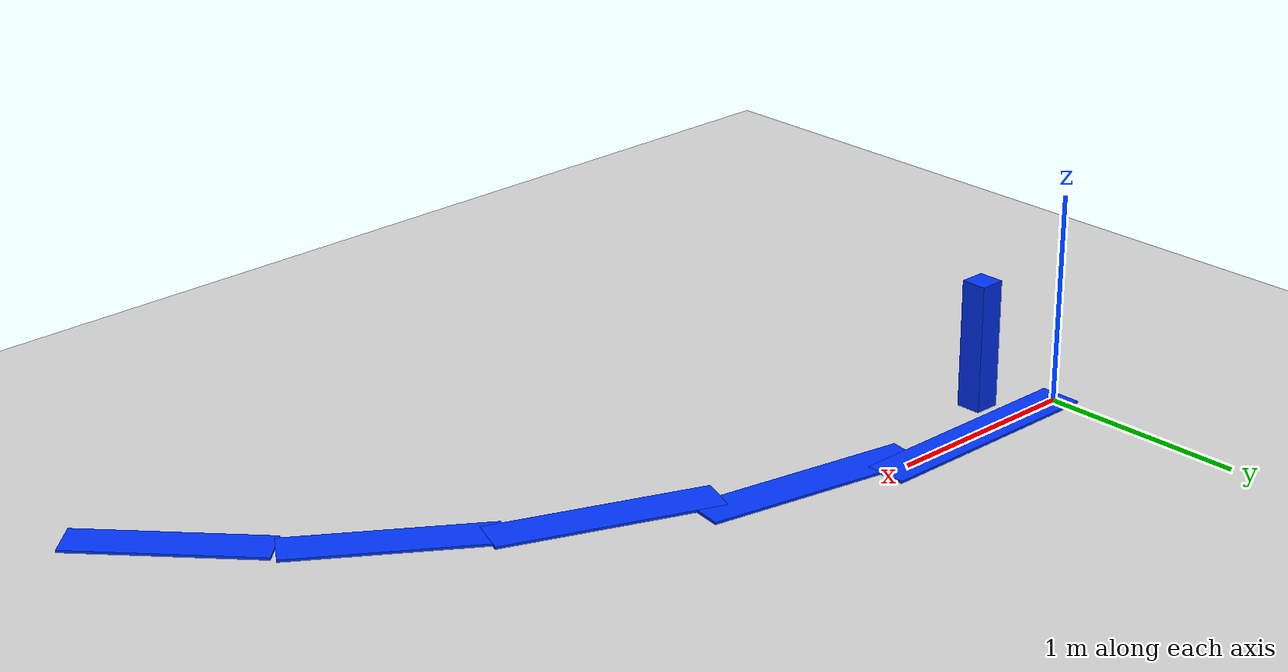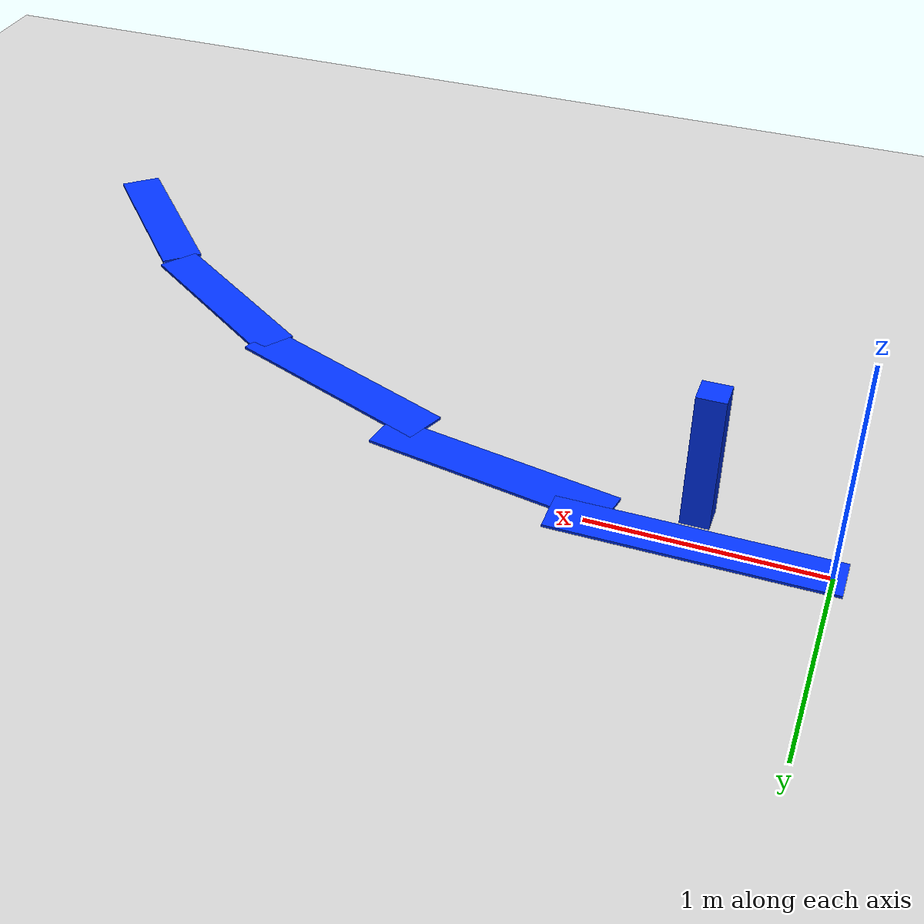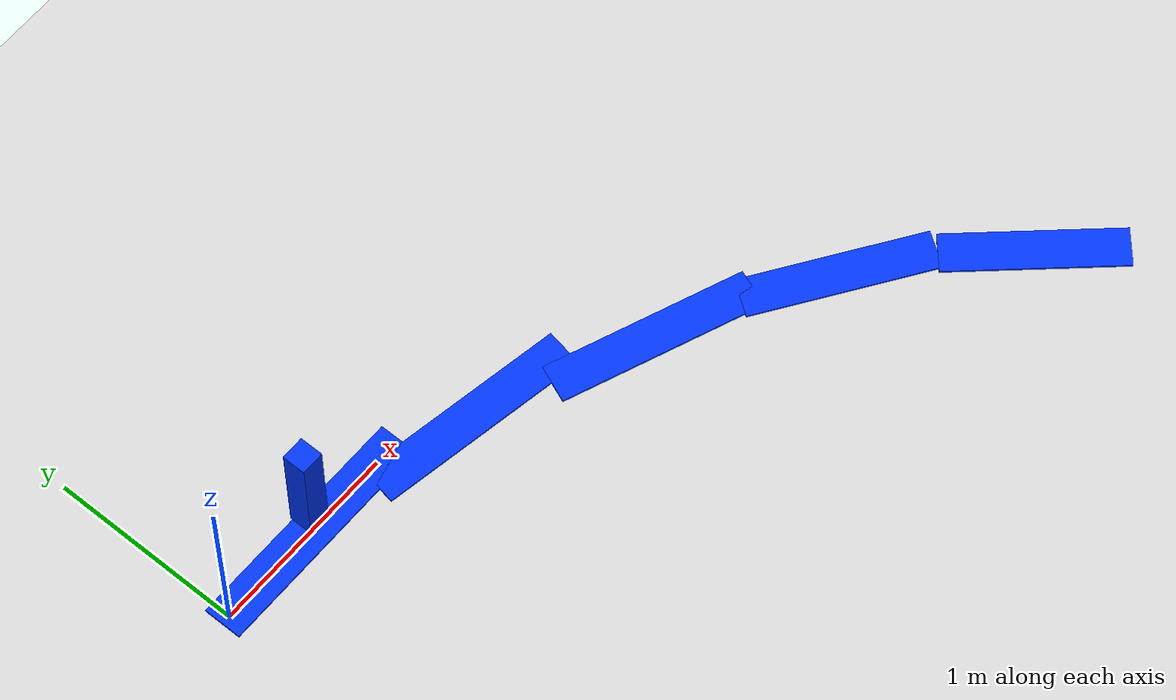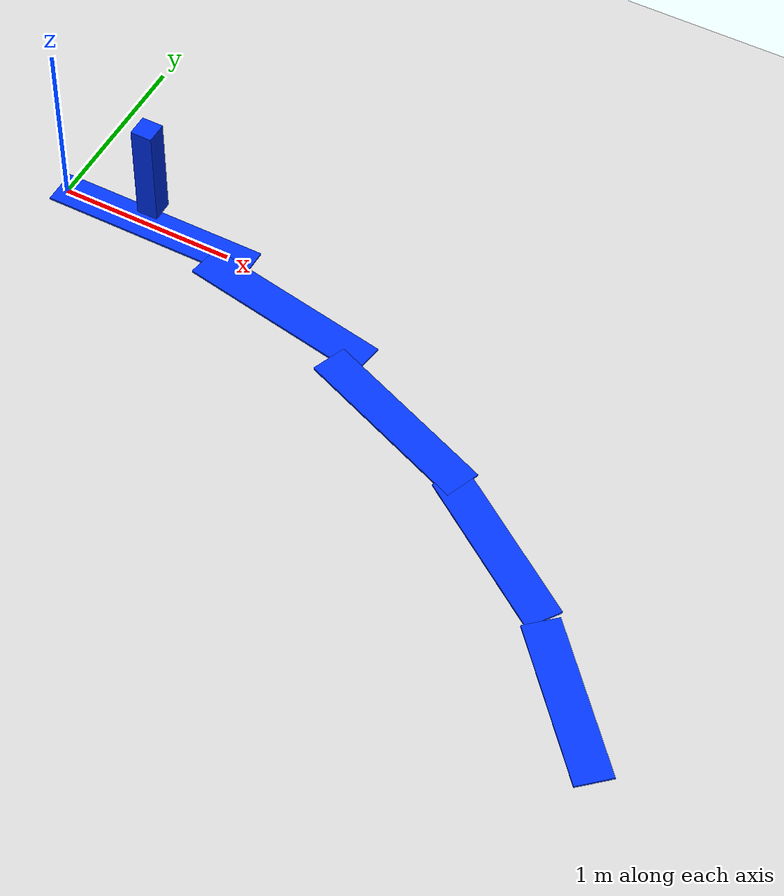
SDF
<sdf version="1.10">
 <world name="tugbot_lane_world_debug">
  <physics name="1ms" type="ignored">
   <max_step_size>0.001</max_step_size>
   <real_time_factor>1.0</real_time_factor>
   <real_time_update_rate>1000</real_time_update_rate>
  </physics>
  <plugin name="gz::sim::systems::Physics" filename="gz-sim-physics-system"/>
  <plugin name="gz::sim::systems::UserCommands" filename="gz-sim-user-commands-system"/>
  <plugin name="gz::sim::systems::SceneBroadcaster" filename="gz-sim-scene-broadcaster-system"/>
  <gravity>0 0 -9.8</gravity>
  <scene>
   <ambient>0.4 0.4 0.4 1</ambient>
   <background>0.75 0.75 0.75 1</background>
   <shadows>true</shadows>
  </scene>
  <model name="ground_plane">
   <static>true</static>
   <link name="link">
    <collision name="collision">
     <geometry><plane><normal>0 0 1</normal><size>40 40</size></plane></geometry>
    </collision>
    <visual name="visual">
     <geometry><plane><normal>0 0 1</normal><size>40 40</size></plane></geometry>
     <material>
      <ambient>0.82 0.82 0.82 1</ambient>
      <diffuse>0.82 0.82 0.82 1</diffuse>
      <specular>0.2 0.2 0.2 1</specular>
     </material>
    </visual>
   </link>
  </model>
  <model name="visual_track_01">
   <static>true</static>
   <pose>0.55 0.00 0.006 0 0 0.00</pose>
   <link name="link">
    <visual name="visual">
     <cast_shadows>false</cast_shadows>
     <geometry><box><size>1.20 0.20 0.012</size></box></geometry>
     <material>
      <ambient>0.0 0.2 0.98 1</ambient>
      <diffuse>0.0 0.2 0.98 1</diffuse>
      <specular>0.1 0.1 0.1 1</specular>
     </material>
    </visual>
   </link>
  </model>
  <model name="visual_track_02">
   <static>true</static>
   <pose>1.45 -0.18 0.006 0 0 -0.18</pose>
   <link name="link">
    <visual name="visual">
     <cast_shadows>false</cast_shadows>
     <geometry><box><size>1.10 0.20 0.012</size></box></geometry>
     <material>
      <ambient>0.0 0.2 0.98 1</ambient>
      <diffuse>0.0 0.2 0.98 1</diffuse>
      <specular>0.1 0.1 0.1 1</specular>
     </material>
    </visual>
   </link>
  </model>
  <model name="visual_track_03">
   <static>true</static>
   <pose>2.30 -0.55 0.006 0 0 -0.38</pose>
   <link name="link">
    <visual name="visual">
     <cast_shadows>false</cast_shadows>
     <geometry><box><size>1.05 0.20 0.012</size></box></geometry>
     <material>
      <ambient>0.0 0.2 0.98 1</ambient>
      <diffuse>0.0 0.2 0.98 1</diffuse>
      <specular>0.1 0.1 0.1 1</specular>
     </material>
    </visual>
   </link>
  </model>
  <model name="visual_track_04">
   <static>true</static>
   <pose>3.10 -1.00 0.006 0 0 -0.60</pose>
   <link name="link">
    <visual name="visual">
     <cast_shadows>false</cast_shadows>
     <geometry><box><size>0.95 0.20 0.012</size></box></geometry>
     <material>
      <ambient>0.0 0.2 0.98 1</ambient>
      <diffuse>0.0 0.2 0.98 1</diffuse>
      <specular>0.1 0.1 0.1 1</specular>
     </material>
    </visual>
   </link>
  </model>
  <model name="visual_track_05">
   <static>true</static>
   <pose>3.78 -1.62 0.006 0 0 -0.84</pose>
   <link name="link">
    <visual name="visual">
     <cast_shadows>false</cast_shadows>
     <geometry><box><size>0.90 0.20 0.012</size></box></geometry>
     <material>
      <ambient>0.0 0.2 0.98 1</ambient>
      <diffuse>0.0 0.2 0.98 1</diffuse>
      <specular>0.1 0.1 0.1 1</specular>
     </material>
    </visual>
   </link>
  </model>
  <model name="camera_diagnostic_target">
   <static>true</static>
   <pose>0.55 0.00 0.45 0 0 0</pose>
   <link name="link">
    <collision name="collision"><geometry><box><size>0.12 0.12 0.60</size></box></geometry></collision>
    <visual name="visual">
     <cast_shadows>false</cast_shadows>
     <geometry><box><size>0.12 0.12 0.60</size></box></geometry>
     <material>
      <ambient>0.0 0.2 0.98 1</ambient>
      <diffuse>0.0 0.2 0.98 1</diffuse>
      <specular>0.1 0.1 0.1 1</specular>
     </material>
    </visual>
   </link>
  </model>
 </world>
</sdf>
